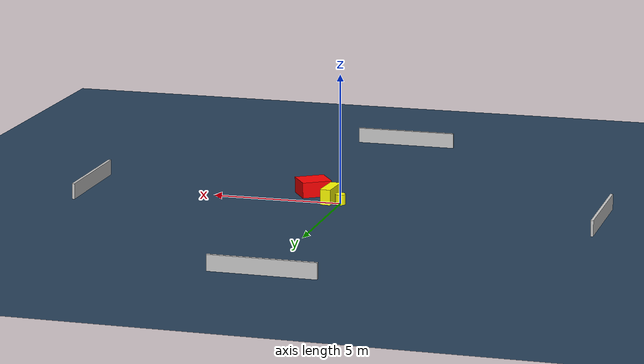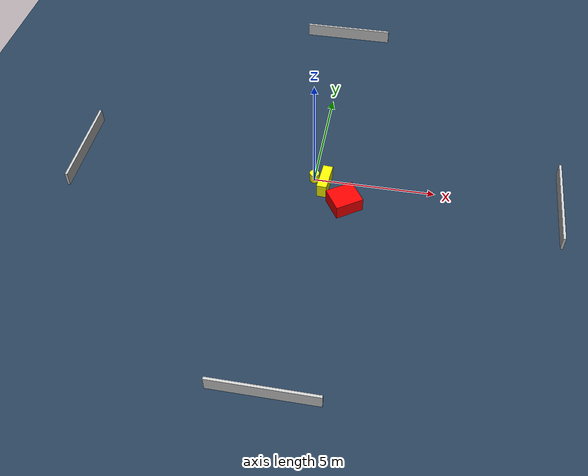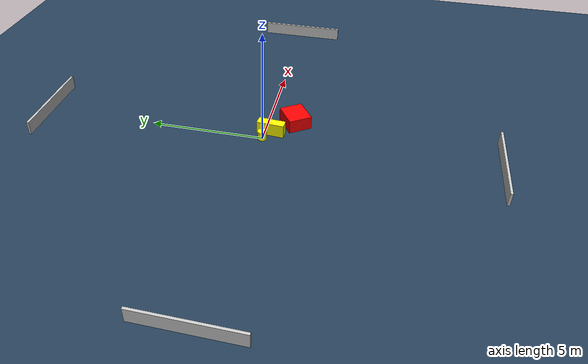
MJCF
<?xml version="1.0" ?>
<mujoco model="generated_environment">
  <option timestep="0.01" integrator="RK4" cone="elliptic"/>
  <default>
    <geom density="1"/>
  </default>
  <asset>
    <texture builtin="gradient" height="3072" name="skybox" rgb1="0.3 0.5 0.7" rgb2="0 0 0" type="skybox" width="512"/>
    <texture builtin="checker" height="300" name="groundplane" rgb1="0.2 0.3 0.4" rgb2="0.1 0.2 0.3" type="2d" width="300"/>
    <material name="groundplane" reflectance="0.2" texrepeat="5 5" texture="groundplane"/>
  </asset>
  <worldbody>
    <light dir="0 0 -1" directional="true" pos="0 0 1.5"/>
    <geom condim="3" friction="0.5 0.005 0.001" material="groundplane" name="floor" pos="0 0 0" size="0 0 0.05" type="plane"/>
    <body name="walls">
      <geom name="wall_1" condim="4" pos="-10.0 0.0 0.3" rgba="0.800000011920929 0.800000011920929 0.800000011920929 1.0" size="0.05 2.0 0.3" type="box"/>
      <geom name="wall_2" condim="4" pos="10.0 0.0 0.3" rgba="0.800000011920929 0.800000011920929 0.800000011920929 1.0" size="0.05 2.0 0.3" type="box"/>
      <geom name="wall_3" condim="4" pos="0.0 -10.0 0.3" rgba="0.800000011920929 0.800000011920929 0.800000011920929 1.0" size="2.0 0.05 0.3" type="box"/>
      <geom name="wall_4" condim="4" pos="0.0 10.0 0.3" rgba="0.800000011920929 0.800000011920929 0.800000011920929 1.0" size="2.0 0.05 0.3" type="box"/>
    </body>
    <body name="robot">
      <joint name="joint_x" type="slide" pos="0 0 0" axis="1 0 0"/>
      <joint name="joint_y" type="slide" pos="0 0 0" axis="0 1 0"/>
      <geom name="robot" type="cylinder" pos="0.0 0.0 0.2" size="0.2 0.2 0.0" mass="5.0" friction="1.0 0.005 0.0001" condim="4" rgba="1.0 1.0 0.0 1.0"/>
    </body>
    <body name="obstacle_1_movable">
      <geom name="obstacle_1_movable" condim="4" pos="0.479770734663694 -0.29454730410363256 0.3" euler="0 0 85.9341224652649" friction="0.0 0.005 0.001" rgba="1.0 1.0 0.0 1.0" size="0.6027881485262456 0.20130810127311335 0.3" type="box" mass="0.1"/>
      <joint type="free"/>
    </body>
    <body name="obstacle_2_static">
      <geom name="obstacle_2_static" condim="4" pos="1.418424466673299 -1.195463420305906 0.3" euler="0 0 33.54264667861925" friction="0.0 0.005 0.001" rgba="1.0 0.0 0.0 1.0" size="0.5787790394250801 0.5210478421451339 0.3" type="box"/>
    </body>
  </worldbody>
  <actuator>
    <motor name="actuator_x" joint="joint_x" gear="1" ctrlrange="-1 1"/>
    <motor name="actuator_y" joint="joint_y" gear="1" ctrlrange="-1 1"/>
  </actuator>
</mujoco>
